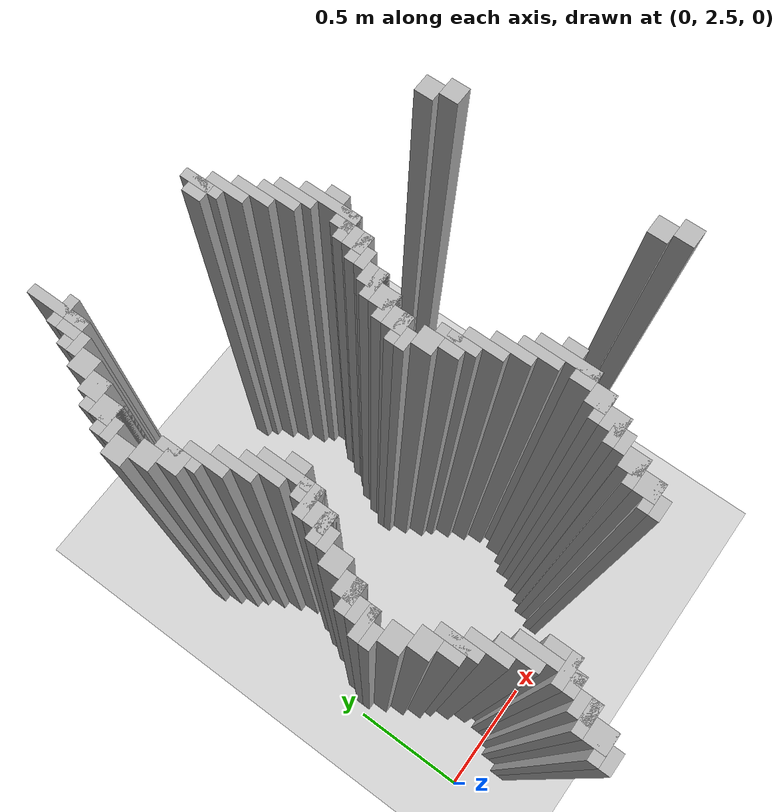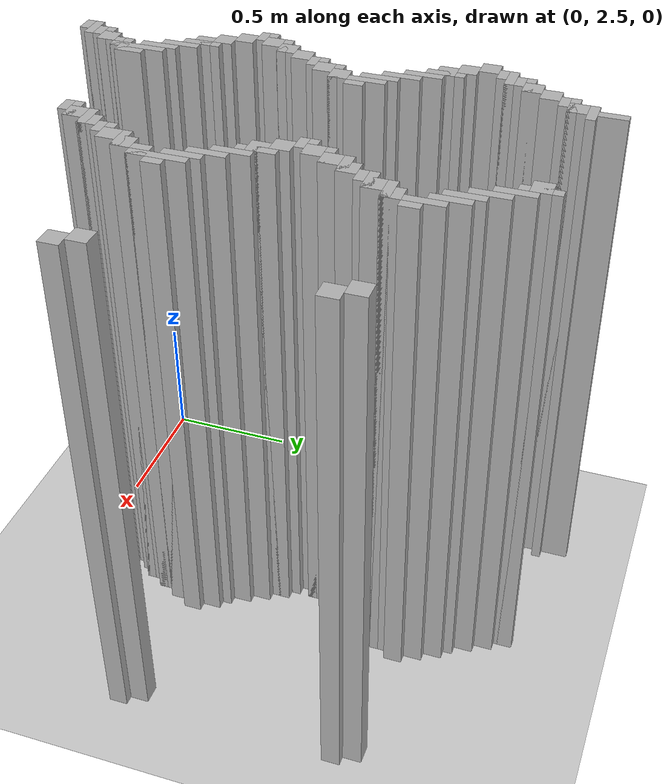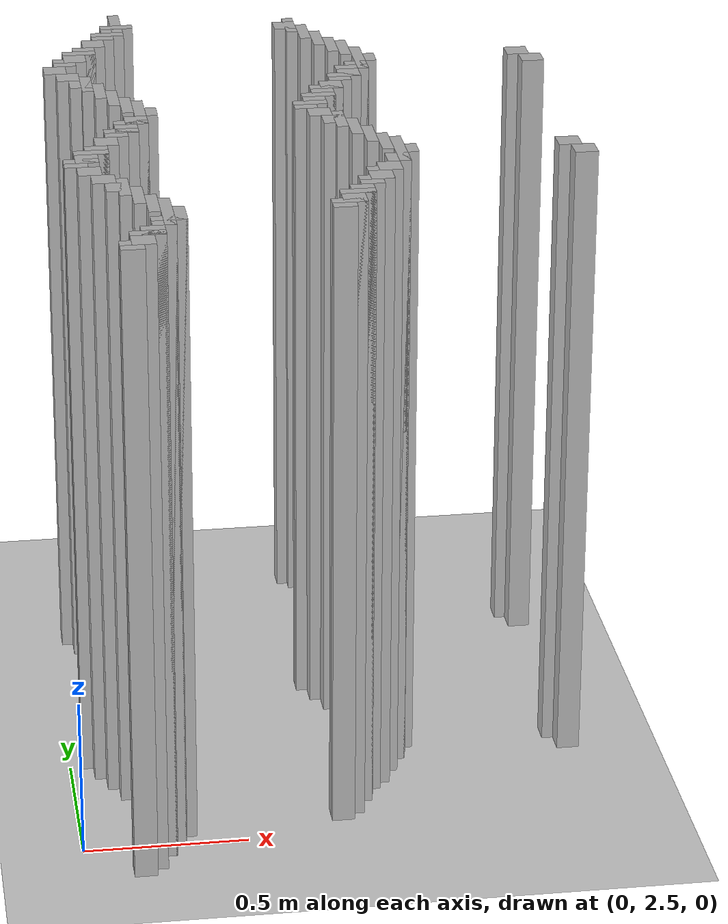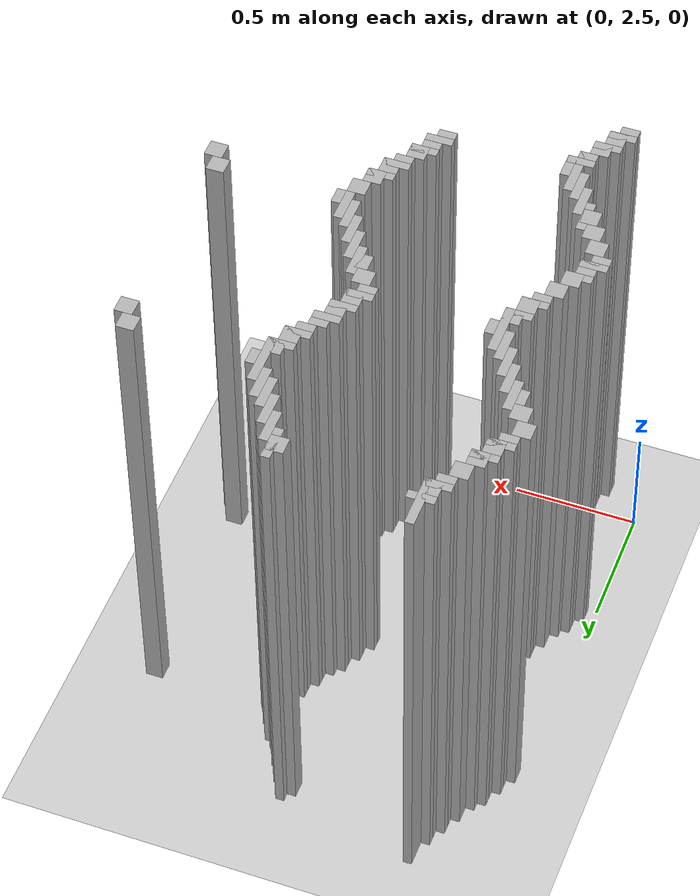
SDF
<sdf version="1.6">
 <world name="slam_world">
  <model name="ground_plane">
   <static>true</static>
   <link name="link">
    <collision name="collision">
     <geometry><plane><normal>0 0 1</normal><size>100 100</size></plane></geometry>
    </collision>
    <visual name="visual">
     <geometry><plane><normal>0 0 1</normal><size>100 100</size></plane></geometry>
     <material>
      <ambient>0.8 0.8 0.8 1</ambient>
      <diffuse>0.8 0.8 0.8 1</diffuse>
      <specular>0.8 0.8 0.8 1</specular>
     </material>
    </visual>
   </link>
  </model>
  <model name="wall_4261">
   <static>true</static>
   <pose>0.29582366589327147 4.280742459396752 1.0 0 0 0</pose>
   <link name="link">
    <collision name="collision">
     <geometry><box><size>0.03480278422273782 0.2088167053364269 2.0</size></box></geometry>
    </collision>
    <visual name="visual">
     <geometry><box><size>0.03480278422273782 0.2088167053364269 2.0</size></box></geometry>
     <material><ambient>0.5 0.5 0.5 1</ambient><diffuse>0.7 0.7 0.7 1</diffuse></material>
    </visual>
   </link>
  </model>
  <model name="wall_4298">
   <static>true</static>
   <pose>0.29582366589327147 4.263341067285383 1.0 0 0 0</pose>
   <link name="link">
    <collision name="collision">
     <geometry><box><size>0.10440835266821345 0.03480278422273782 2.0</size></box></geometry>
    </collision>
    <visual name="visual">
     <geometry><box><size>0.10440835266821345 0.03480278422273782 2.0</size></box></geometry>
     <material><ambient>0.5 0.5 0.5 1</ambient><diffuse>0.7 0.7 0.7 1</diffuse></material>
    </visual>
   </link>
  </model>
  <model name="wall_4299">
   <static>true</static>
   <pose>0.8526682134570766 4.211136890951276 1.0 0 0 0</pose>
   <link name="link">
    <collision name="collision">
     <geometry><box><size>0.03480278422273782 0.13921113689095127 2.0</size></box></geometry>
    </collision>
    <visual name="visual">
     <geometry><box><size>0.03480278422273782 0.13921113689095127 2.0</size></box></geometry>
     <material><ambient>0.5 0.5 0.5 1</ambient><diffuse>0.7 0.7 0.7 1</diffuse></material>
    </visual>
   </link>
  </model>
  <model name="wall_4312">
   <static>true</static>
   <pose>0.27842227378190254 4.211136890951276 1.0 0 0 0</pose>
   <link name="link">
    <collision name="collision">
     <geometry><box><size>0.06960556844547564 0.06960556844547564 2.0</size></box></geometry>
    </collision>
    <visual name="visual">
     <geometry><box><size>0.06960556844547564 0.06960556844547564 2.0</size></box></geometry>
     <material><ambient>0.5 0.5 0.5 1</ambient><diffuse>0.7 0.7 0.7 1</diffuse></material>
    </visual>
   </link>
  </model>
  <model name="wall_4313">
   <static>true</static>
   <pose>0.8352668213457076 4.211136890951276 1.0 0 0 0</pose>
   <link name="link">
    <collision name="collision">
     <geometry><box><size>0.06960556844547564 0.06960556844547564 2.0</size></box></geometry>
    </collision>
    <visual name="visual">
     <geometry><box><size>0.06960556844547564 0.06960556844547564 2.0</size></box></geometry>
     <material><ambient>0.5 0.5 0.5 1</ambient><diffuse>0.7 0.7 0.7 1</diffuse></material>
    </visual>
   </link>
  </model>
  <model name="wall_4327">
   <static>true</static>
   <pose>0.2610208816705336 4.193735498839907 1.0 0 0 0</pose>
   <link name="link">
    <collision name="collision">
     <geometry><box><size>0.10440835266821345 0.03480278422273782 2.0</size></box></geometry>
    </collision>
    <visual name="visual">
     <geometry><box><size>0.10440835266821345 0.03480278422273782 2.0</size></box></geometry>
     <material><ambient>0.5 0.5 0.5 1</ambient><diffuse>0.7 0.7 0.7 1</diffuse></material>
    </visual>
   </link>
  </model>
  <model name="wall_4328">
   <static>true</static>
   <pose>0.8874709976798143 4.1415313225058 1.0 0 0 0</pose>
   <link name="link">
    <collision name="collision">
     <geometry><box><size>0.03480278422273782 0.13921113689095127 2.0</size></box></geometry>
    </collision>
    <visual name="visual">
     <geometry><box><size>0.03480278422273782 0.13921113689095127 2.0</size></box></geometry>
     <material><ambient>0.5 0.5 0.5 1</ambient><diffuse>0.7 0.7 0.7 1</diffuse></material>
    </visual>
   </link>
  </model>
  <model name="wall_4342">
   <static>true</static>
   <pose>0.24361948955916474 4.158932714617169 1.0 0 0 0</pose>
   <link name="link">
    <collision name="collision">
     <geometry><box><size>0.06960556844547564 0.03480278422273782 2.0</size></box></geometry>
    </collision>
    <visual name="visual">
     <geometry><box><size>0.06960556844547564 0.03480278422273782 2.0</size></box></geometry>
     <material><ambient>0.5 0.5 0.5 1</ambient><diffuse>0.7 0.7 0.7 1</diffuse></material>
    </visual>
   </link>
  </model>
  <model name="wall_4351">
   <static>true</static>
   <pose>0.2088167053364269 4.106728538283062 1.0 0 0 0</pose>
   <link name="link">
    <collision name="collision">
     <geometry><box><size>0.06960556844547564 0.06960556844547564 2.0</size></box></geometry>
    </collision>
    <visual name="visual">
     <geometry><box><size>0.06960556844547564 0.06960556844547564 2.0</size></box></geometry>
     <material><ambient>0.5 0.5 0.5 1</ambient><diffuse>0.7 0.7 0.7 1</diffuse></material>
    </visual>
   </link>
  </model>
  <model name="wall_4352">
   <static>true</static>
   <pose>0.9222737819025522 4.071925754060325 1.0 0 0 0</pose>
   <link name="link">
    <collision name="collision">
     <geometry><box><size>0.03480278422273782 0.13921113689095127 2.0</size></box></geometry>
    </collision>
    <visual name="visual">
     <geometry><box><size>0.03480278422273782 0.13921113689095127 2.0</size></box></geometry>
     <material><ambient>0.5 0.5 0.5 1</ambient><diffuse>0.7 0.7 0.7 1</diffuse></material>
    </visual>
   </link>
  </model>
  <model name="wall_4366">
   <static>true</static>
   <pose>0.17401392111368907 4.037122969837587 1.0 0 0 0</pose>
   <link name="link">
    <collision name="collision">
     <geometry><box><size>0.06960556844547564 0.06960556844547564 2.0</size></box></geometry>
    </collision>
    <visual name="visual">
     <geometry><box><size>0.06960556844547564 0.06960556844547564 2.0</size></box></geometry>
     <material><ambient>0.5 0.5 0.5 1</ambient><diffuse>0.7 0.7 0.7 1</diffuse></material>
    </visual>
   </link>
  </model>
  <model name="wall_4367">
   <static>true</static>
   <pose>0.95707656612529 4.002320185614849 1.0 0 0 0</pose>
   <link name="link">
    <collision name="collision">
     <geometry><box><size>0.03480278422273782 0.13921113689095127 2.0</size></box></geometry>
    </collision>
    <visual name="visual">
     <geometry><box><size>0.03480278422273782 0.13921113689095127 2.0</size></box></geometry>
     <material><ambient>0.5 0.5 0.5 1</ambient><diffuse>0.7 0.7 0.7 1</diffuse></material>
    </visual>
   </link>
  </model>
  <model name="wall_4381">
   <static>true</static>
   <pose>0.15661252900232017 4.019721577726218 1.0 0 0 0</pose>
   <link name="link">
    <collision name="collision">
     <geometry><box><size>0.10440835266821345 0.03480278422273782 2.0</size></box></geometry>
    </collision>
    <visual name="visual">
     <geometry><box><size>0.10440835266821345 0.03480278422273782 2.0</size></box></geometry>
     <material><ambient>0.5 0.5 0.5 1</ambient><diffuse>0.7 0.7 0.7 1</diffuse></material>
    </visual>
   </link>
  </model>
  <model name="wall_4382">
   <static>true</static>
   <pose>0.9918793503480278 3.967517401392111 1.0 0 0 0</pose>
   <link name="link">
    <collision name="collision">
     <geometry><box><size>0.03480278422273782 0.13921113689095127 2.0</size></box></geometry>
    </collision>
    <visual name="visual">
     <geometry><box><size>0.03480278422273782 0.13921113689095127 2.0</size></box></geometry>
     <material><ambient>0.5 0.5 0.5 1</ambient><diffuse>0.7 0.7 0.7 1</diffuse></material>
    </visual>
   </link>
  </model>
  <model name="wall_4396">
   <static>true</static>
   <pose>0.13921113689095127 3.967517401392111 1.0 0 0 0</pose>
   <link name="link">
    <collision name="collision">
     <geometry><box><size>0.06960556844547564 0.06960556844547564 2.0</size></box></geometry>
    </collision>
    <visual name="visual">
     <geometry><box><size>0.06960556844547564 0.06960556844547564 2.0</size></box></geometry>
     <material><ambient>0.5 0.5 0.5 1</ambient><diffuse>0.7 0.7 0.7 1</diffuse></material>
    </visual>
   </link>
  </model>
  <model name="wall_4404">
   <static>true</static>
   <pose>0.12180974477958237 3.9501160092807424 1.0 0 0 0</pose>
   <link name="link">
    <collision name="collision">
     <geometry><box><size>0.10440835266821345 0.03480278422273782 2.0</size></box></geometry>
    </collision>
    <visual name="visual">
     <geometry><box><size>0.10440835266821345 0.03480278422273782 2.0</size></box></geometry>
     <material><ambient>0.5 0.5 0.5 1</ambient><diffuse>0.7 0.7 0.7 1</diffuse></material>
    </visual>
   </link>
  </model>
  <model name="wall_4405">
   <static>true</static>
   <pose>1.0266821345707655 3.863109048723898 1.0 0 0 0</pose>
   <link name="link">
    <collision name="collision">
     <geometry><box><size>0.03480278422273782 0.2088167053364269 2.0</size></box></geometry>
    </collision>
    <visual name="visual">
     <geometry><box><size>0.03480278422273782 0.2088167053364269 2.0</size></box></geometry>
     <material><ambient>0.5 0.5 0.5 1</ambient><diffuse>0.7 0.7 0.7 1</diffuse></material>
    </visual>
   </link>
  </model>
  <model name="wall_4419">
   <static>true</static>
   <pose>0.10440835266821345 3.9153132250580045 1.0 0 0 0</pose>
   <link name="link">
    <collision name="collision">
     <geometry><box><size>0.06960556844547564 0.03480278422273782 2.0</size></box></geometry>
    </collision>
    <visual name="visual">
     <geometry><box><size>0.06960556844547564 0.03480278422273782 2.0</size></box></geometry>
     <material><ambient>0.5 0.5 0.5 1</ambient><diffuse>0.7 0.7 0.7 1</diffuse></material>
    </visual>
   </link>
  </model>
  <model name="wall_4427">
   <static>true</static>
   <pose>0.06960556844547564 3.863109048723898 1.0 0 0 0</pose>
   <link name="link">
    <collision name="collision">
     <geometry><box><size>0.06960556844547564 0.06960556844547564 2.0</size></box></geometry>
    </collision>
    <visual name="visual">
     <geometry><box><size>0.06960556844547564 0.06960556844547564 2.0</size></box></geometry>
     <material><ambient>0.5 0.5 0.5 1</ambient><diffuse>0.7 0.7 0.7 1</diffuse></material>
    </visual>
   </link>
  </model>
  <model name="wall_4428">
   <static>true</static>
   <pose>1.0614849187935034 3.863109048723898 1.0 0 0 0</pose>
   <link name="link">
    <collision name="collision">
     <geometry><box><size>0.03480278422273782 0.06960556844547564 2.0</size></box></geometry>
    </collision>
    <visual name="visual">
     <geometry><box><size>0.03480278422273782 0.06960556844547564 2.0</size></box></geometry>
     <material><ambient>0.5 0.5 0.5 1</ambient><diffuse>0.7 0.7 0.7 1</diffuse></material>
    </visual>
   </link>
  </model>
  <model name="wall_4429">
   <static>true</static>
   <pose>1.531322505800464 3.863109048723898 1.0 0 0 0</pose>
   <link name="link">
    <collision name="collision">
     <geometry><box><size>0.06960556844547564 0.06960556844547564 2.0</size></box></geometry>
    </collision>
    <visual name="visual">
     <geometry><box><size>0.06960556844547564 0.06960556844547564 2.0</size></box></geometry>
     <material><ambient>0.5 0.5 0.5 1</ambient><diffuse>0.7 0.7 0.7 1</diffuse></material>
    </visual>
   </link>
  </model>
  <model name="wall_4443">
   <static>true</static>
   <pose>0.10440835266821345 3.793503480278422 1.0 0 0 0</pose>
   <link name="link">
    <collision name="collision">
     <geometry><box><size>0.06960556844547564 0.06960556844547564 2.0</size></box></geometry>
    </collision>
    <visual name="visual">
     <geometry><box><size>0.06960556844547564 0.06960556844547564 2.0</size></box></geometry>
     <material><ambient>0.5 0.5 0.5 1</ambient><diffuse>0.7 0.7 0.7 1</diffuse></material>
    </visual>
   </link>
  </model>
  <model name="wall_4444">
   <static>true</static>
   <pose>1.0092807424593968 3.793503480278422 1.0 0 0 0</pose>
   <link name="link">
    <collision name="collision">
     <geometry><box><size>0.06960556844547564 0.06960556844547564 2.0</size></box></geometry>
    </collision>
    <visual name="visual">
     <geometry><box><size>0.06960556844547564 0.06960556844547564 2.0</size></box></geometry>
     <material><ambient>0.5 0.5 0.5 1</ambient><diffuse>0.7 0.7 0.7 1</diffuse></material>
    </visual>
   </link>
  </model>
  <model name="wall_4445">
   <static>true</static>
   <pose>1.5661252900232019 3.793503480278422 1.0 0 0 0</pose>
   <link name="link">
    <collision name="collision">
     <geometry><box><size>0.06960556844547564 0.06960556844547564 2.0</size></box></geometry>
    </collision>
    <visual name="visual">
     <geometry><box><size>0.06960556844547564 0.06960556844547564 2.0</size></box></geometry>
     <material><ambient>0.5 0.5 0.5 1</ambient><diffuse>0.7 0.7 0.7 1</diffuse></material>
    </visual>
   </link>
  </model>
  <model name="wall_4460">
   <static>true</static>
   <pose>0.15661252900232017 3.7238979118329465 1.0 0 0 0</pose>
   <link name="link">
    <collision name="collision">
     <geometry><box><size>0.03480278422273782 0.13921113689095127 2.0</size></box></geometry>
    </collision>
    <visual name="visual">
     <geometry><box><size>0.03480278422273782 0.13921113689095127 2.0</size></box></geometry>
     <material><ambient>0.5 0.5 0.5 1</ambient><diffuse>0.7 0.7 0.7 1</diffuse></material>
    </visual>
   </link>
  </model>
  <model name="wall_4461">
   <static>true</static>
   <pose>0.9918793503480278 3.776102088167053 1.0 0 0 0</pose>
   <link name="link">
    <collision name="collision">
     <geometry><box><size>0.10440835266821345 0.03480278422273782 2.0</size></box></geometry>
    </collision>
    <visual name="visual">
     <geometry><box><size>0.10440835266821345 0.03480278422273782 2.0</size></box></geometry>
     <material><ambient>0.5 0.5 0.5 1</ambient><diffuse>0.7 0.7 0.7 1</diffuse></material>
    </visual>
   </link>
  </model>
  <model name="wall_4477">
   <static>true</static>
   <pose>0.13921113689095127 3.7238979118329465 1.0 0 0 0</pose>
   <link name="link">
    <collision name="collision">
     <geometry><box><size>0.06960556844547564 0.06960556844547564 2.0</size></box></geometry>
    </collision>
    <visual name="visual">
     <geometry><box><size>0.06960556844547564 0.06960556844547564 2.0</size></box></geometry>
     <material><ambient>0.5 0.5 0.5 1</ambient><diffuse>0.7 0.7 0.7 1</diffuse></material>
    </visual>
   </link>
  </model>
  <model name="wall_4478">
   <static>true</static>
   <pose>0.974477958236659 3.7238979118329465 1.0 0 0 0</pose>
   <link name="link">
    <collision name="collision">
     <geometry><box><size>0.06960556844547564 0.06960556844547564 2.0</size></box></geometry>
    </collision>
    <visual name="visual">
     <geometry><box><size>0.06960556844547564 0.06960556844547564 2.0</size></box></geometry>
     <material><ambient>0.5 0.5 0.5 1</ambient><diffuse>0.7 0.7 0.7 1</diffuse></material>
    </visual>
   </link>
  </model>
  <model name="wall_4494">
   <static>true</static>
   <pose>0.191415313225058 3.6542923433874708 1.0 0 0 0</pose>
   <link name="link">
    <collision name="collision">
     <geometry><box><size>0.03480278422273782 0.13921113689095127 2.0</size></box></geometry>
    </collision>
    <visual name="visual">
     <geometry><box><size>0.03480278422273782 0.13921113689095127 2.0</size></box></geometry>
     <material><ambient>0.5 0.5 0.5 1</ambient><diffuse>0.7 0.7 0.7 1</diffuse></material>
    </visual>
   </link>
  </model>
  <model name="wall_4495">
   <static>true</static>
   <pose>0.95707656612529 3.706496519721578 1.0 0 0 0</pose>
   <link name="link">
    <collision name="collision">
     <geometry><box><size>0.10440835266821345 0.03480278422273782 2.0</size></box></geometry>
    </collision>
    <visual name="visual">
     <geometry><box><size>0.10440835266821345 0.03480278422273782 2.0</size></box></geometry>
     <material><ambient>0.5 0.5 0.5 1</ambient><diffuse>0.7 0.7 0.7 1</diffuse></material>
    </visual>
   </link>
  </model>
  <model name="wall_4511">
   <static>true</static>
   <pose>0.9396751740139211 3.67169373549884 1.0 0 0 0</pose>
   <link name="link">
    <collision name="collision">
     <geometry><box><size>0.06960556844547564 0.03480278422273782 2.0</size></box></geometry>
    </collision>
    <visual name="visual">
     <geometry><box><size>0.06960556844547564 0.03480278422273782 2.0</size></box></geometry>
     <material><ambient>0.5 0.5 0.5 1</ambient><diffuse>0.7 0.7 0.7 1</diffuse></material>
    </visual>
   </link>
  </model>
  <model name="wall_4518">
   <static>true</static>
   <pose>0.2262180974477958 3.584686774941995 1.0 0 0 0</pose>
   <link name="link">
    <collision name="collision">
     <geometry><box><size>0.03480278422273782 0.13921113689095127 2.0</size></box></geometry>
    </collision>
    <visual name="visual">
     <geometry><box><size>0.03480278422273782 0.13921113689095127 2.0</size></box></geometry>
     <material><ambient>0.5 0.5 0.5 1</ambient><diffuse>0.7 0.7 0.7 1</diffuse></material>
    </visual>
   </link>
  </model>
  <model name="wall_4519">
   <static>true</static>
   <pose>0.9048723897911832 3.619489559164733 1.0 0 0 0</pose>
   <link name="link">
    <collision name="collision">
     <geometry><box><size>0.06960556844547564 0.06960556844547564 2.0</size></box></geometry>
    </collision>
    <visual name="visual">
     <geometry><box><size>0.06960556844547564 0.06960556844547564 2.0</size></box></geometry>
     <material><ambient>0.5 0.5 0.5 1</ambient><diffuse>0.7 0.7 0.7 1</diffuse></material>
    </visual>
   </link>
  </model>
  <model name="wall_4535">
   <static>true</static>
   <pose>0.8874709976798143 3.602088167053364 1.0 0 0 0</pose>
   <link name="link">
    <collision name="collision">
     <geometry><box><size>0.10440835266821345 0.03480278422273782 2.0</size></box></geometry>
    </collision>
    <visual name="visual">
     <geometry><box><size>0.10440835266821345 0.03480278422273782 2.0</size></box></geometry>
     <material><ambient>0.5 0.5 0.5 1</ambient><diffuse>0.7 0.7 0.7 1</diffuse></material>
    </visual>
   </link>
  </model>
  <model name="wall_4542">
   <static>true</static>
   <pose>0.2610208816705336 3.51508120649652 1.0 0 0 0</pose>
   <link name="link">
    <collision name="collision">
     <geometry><box><size>0.03480278422273782 0.13921113689095127 2.0</size></box></geometry>
    </collision>
    <visual name="visual">
     <geometry><box><size>0.03480278422273782 0.13921113689095127 2.0</size></box></geometry>
     <material><ambient>0.5 0.5 0.5 1</ambient><diffuse>0.7 0.7 0.7 1</diffuse></material>
    </visual>
   </link>
  </model>
  <model name="wall_4543">
   <static>true</static>
   <pose>0.8700696055684455 3.549883990719257 1.0 0 0 0</pose>
   <link name="link">
    <collision name="collision">
     <geometry><box><size>0.06960556844547564 0.06960556844547564 2.0</size></box></geometry>
    </collision>
    <visual name="visual">
     <geometry><box><size>0.06960556844547564 0.06960556844547564 2.0</size></box></geometry>
     <material><ambient>0.5 0.5 0.5 1</ambient><diffuse>0.7 0.7 0.7 1</diffuse></material>
    </visual>
   </link>
  </model>
  <model name="wall_4559">
   <static>true</static>
   <pose>0.29582366589327147 3.445475638051044 1.0 0 0 0</pose>
   <link name="link">
    <collision name="collision">
     <geometry><box><size>0.03480278422273782 0.2088167053364269 2.0</size></box></geometry>
    </collision>
    <visual name="visual">
     <geometry><box><size>0.03480278422273782 0.2088167053364269 2.0</size></box></geometry>
     <material><ambient>0.5 0.5 0.5 1</ambient><diffuse>0.7 0.7 0.7 1</diffuse></material>
    </visual>
   </link>
  </model>
  <model name="wall_4560">
   <static>true</static>
   <pose>0.8526682134570766 3.5324825986078885 1.0 0 0 0</pose>
   <link name="link">
    <collision name="collision">
     <geometry><box><size>0.10440835266821345 0.03480278422273782 2.0</size></box></geometry>
    </collision>
    <visual name="visual">
     <geometry><box><size>0.10440835266821345 0.03480278422273782 2.0</size></box></geometry>
     <material><ambient>0.5 0.5 0.5 1</ambient><diffuse>0.7 0.7 0.7 1</diffuse></material>
    </visual>
   </link>
  </model>
  <model name="wall_4576">
   <static>true</static>
   <pose>0.8352668213457076 3.480278422273782 1.0 0 0 0</pose>
   <link name="link">
    <collision name="collision">
     <geometry><box><size>0.06960556844547564 0.06960556844547564 2.0</size></box></geometry>
    </collision>
    <visual name="visual">
     <geometry><box><size>0.06960556844547564 0.06960556844547564 2.0</size></box></geometry>
     <material><ambient>0.5 0.5 0.5 1</ambient><diffuse>0.7 0.7 0.7 1</diffuse></material>
    </visual>
   </link>
  </model>
  <model name="wall_4583">
   <static>true</static>
   <pose>0.3306264501160093 3.445475638051044 1.0 0 0 0</pose>
   <link name="link">
    <collision name="collision">
     <geometry><box><size>0.03480278422273782 0.06960556844547564 2.0</size></box></geometry>
    </collision>
    <visual name="visual">
     <geometry><box><size>0.03480278422273782 0.06960556844547564 2.0</size></box></geometry>
     <material><ambient>0.5 0.5 0.5 1</ambient><diffuse>0.7 0.7 0.7 1</diffuse></material>
    </visual>
   </link>
  </model>
  <model name="wall_4584">
   <static>true</static>
   <pose>0.8178654292343387 3.4628770301624128 1.0 0 0 0</pose>
   <link name="link">
    <collision name="collision">
     <geometry><box><size>0.10440835266821345 0.03480278422273782 2.0</size></box></geometry>
    </collision>
    <visual name="visual">
     <geometry><box><size>0.10440835266821345 0.03480278422273782 2.0</size></box></geometry>
     <material><ambient>0.5 0.5 0.5 1</ambient><diffuse>0.7 0.7 0.7 1</diffuse></material>
    </visual>
   </link>
  </model>
  <model name="wall_4599">
   <static>true</static>
   <pose>0.8004640371229698 3.428074245939675 1.0 0 0 0</pose>
   <link name="link">
    <collision name="collision">
     <geometry><box><size>0.06960556844547564 0.03480278422273782 2.0</size></box></geometry>
    </collision>
    <visual name="visual">
     <geometry><box><size>0.06960556844547564 0.03480278422273782 2.0</size></box></geometry>
     <material><ambient>0.5 0.5 0.5 1</ambient><diffuse>0.7 0.7 0.7 1</diffuse></material>
    </visual>
   </link>
  </model>
  <model name="wall_4606">
   <static>true</static>
   <pose>0.27842227378190254 3.3758700696055683 1.0 0 0 0</pose>
   <link name="link">
    <collision name="collision">
     <geometry><box><size>0.06960556844547564 0.06960556844547564 2.0</size></box></geometry>
    </collision>
    <visual name="visual">
     <geometry><box><size>0.06960556844547564 0.06960556844547564 2.0</size></box></geometry>
     <material><ambient>0.5 0.5 0.5 1</ambient><diffuse>0.7 0.7 0.7 1</diffuse></material>
    </visual>
   </link>
  </model>
  <model name="wall_4607">
   <static>true</static>
   <pose>0.8352668213457076 3.3758700696055683 1.0 0 0 0</pose>
   <link name="link">
    <collision name="collision">
     <geometry><box><size>0.06960556844547564 0.06960556844547564 2.0</size></box></geometry>
    </collision>
    <visual name="visual">
     <geometry><box><size>0.06960556844547564 0.06960556844547564 2.0</size></box></geometry>
     <material><ambient>0.5 0.5 0.5 1</ambient><diffuse>0.7 0.7 0.7 1</diffuse></material>
    </visual>
   </link>
  </model>
  <model name="wall_4619">
   <static>true</static>
   <pose>0.2610208816705336 3.358468677494199 1.0 0 0 0</pose>
   <link name="link">
    <collision name="collision">
     <geometry><box><size>0.10440835266821345 0.03480278422273782 2.0</size></box></geometry>
    </collision>
    <visual name="visual">
     <geometry><box><size>0.10440835266821345 0.03480278422273782 2.0</size></box></geometry>
     <material><ambient>0.5 0.5 0.5 1</ambient><diffuse>0.7 0.7 0.7 1</diffuse></material>
    </visual>
   </link>
  </model>
  <model name="wall_4620">
   <static>true</static>
   <pose>0.8874709976798143 3.3062645011600926 1.0 0 0 0</pose>
   <link name="link">
    <collision name="collision">
     <geometry><box><size>0.03480278422273782 0.13921113689095127 2.0</size></box></geometry>
    </collision>
    <visual name="visual">
     <geometry><box><size>0.03480278422273782 0.13921113689095127 2.0</size></box></geometry>
     <material><ambient>0.5 0.5 0.5 1</ambient><diffuse>0.7 0.7 0.7 1</diffuse></material>
    </visual>
   </link>
  </model>
  <model name="wall_4632">
   <static>true</static>
   <pose>0.24361948955916474 3.3062645011600926 1.0 0 0 0</pose>
   <link name="link">
    <collision name="collision">
     <geometry><box><size>0.06960556844547564 0.06960556844547564 2.0</size></box></geometry>
    </collision>
    <visual name="visual">
     <geometry><box><size>0.06960556844547564 0.06960556844547564 2.0</size></box></geometry>
     <material><ambient>0.5 0.5 0.5 1</ambient><diffuse>0.7 0.7 0.7 1</diffuse></material>
    </visual>
   </link>
  </model>
  <model name="wall_4633">
   <static>true</static>
   <pose>0.8700696055684455 3.3062645011600926 1.0 0 0 0</pose>
   <link name="link">
    <collision name="collision">
     <geometry><box><size>0.06960556844547564 0.06960556844547564 2.0</size></box></geometry>
    </collision>
    <visual name="visual">
     <geometry><box><size>0.06960556844547564 0.06960556844547564 2.0</size></box></geometry>
     <material><ambient>0.5 0.5 0.5 1</ambient><diffuse>0.7 0.7 0.7 1</diffuse></material>
    </visual>
   </link>
  </model>
  <model name="wall_4645">
   <static>true</static>
   <pose>0.2262180974477958 3.288863109048724 1.0 0 0 0</pose>
   <link name="link">
    <collision name="collision">
     <geometry><box><size>0.10440835266821345 0.03480278422273782 2.0</size></box></geometry>
    </collision>
    <visual name="visual">
     <geometry><box><size>0.10440835266821345 0.03480278422273782 2.0</size></box></geometry>
     <material><ambient>0.5 0.5 0.5 1</ambient><diffuse>0.7 0.7 0.7 1</diffuse></material>
    </visual>
   </link>
  </model>
  <model name="wall_4646">
   <static>true</static>
   <pose>0.9222737819025522 3.236658932714617 1.0 0 0 0</pose>
   <link name="link">
    <collision name="collision">
     <geometry><box><size>0.03480278422273782 0.13921113689095127 2.0</size></box></geometry>
    </collision>
    <visual name="visual">
     <geometry><box><size>0.03480278422273782 0.13921113689095127 2.0</size></box></geometry>
     <material><ambient>0.5 0.5 0.5 1</ambient><diffuse>0.7 0.7 0.7 1</diffuse></material>
    </visual>
   </link>
  </model>
  <model name="wall_4658">
   <static>true</static>
   <pose>0.2088167053364269 3.254060324825986 1.0 0 0 0</pose>
   <link name="link">
    <collision name="collision">
     <geometry><box><size>0.06960556844547564 0.03480278422273782 2.0</size></box></geometry>
    </collision>
    <visual name="visual">
     <geometry><box><size>0.06960556844547564 0.03480278422273782 2.0</size></box></geometry>
     <material><ambient>0.5 0.5 0.5 1</ambient><diffuse>0.7 0.7 0.7 1</diffuse></material>
    </visual>
   </link>
  </model>
  <model name="wall_4664">
   <static>true</static>
   <pose>0.17401392111368907 3.201856148491879 1.0 0 0 0</pose>
   <link name="link">
    <collision name="collision">
     <geometry><box><size>0.06960556844547564 0.06960556844547564 2.0</size></box></geometry>
    </collision>
    <visual name="visual">
     <geometry><box><size>0.06960556844547564 0.06960556844547564 2.0</size></box></geometry>
     <material><ambient>0.5 0.5 0.5 1</ambient><diffuse>0.7 0.7 0.7 1</diffuse></material>
    </visual>
   </link>
  </model>
  <model name="wall_4665">
   <static>true</static>
   <pose>0.95707656612529 3.167053364269141 1.0 0 0 0</pose>
   <link name="link">
    <collision name="collision">
     <geometry><box><size>0.03480278422273782 0.13921113689095127 2.0</size></box></geometry>
    </collision>
    <visual name="visual">
     <geometry><box><size>0.03480278422273782 0.13921113689095127 2.0</size></box></geometry>
     <material><ambient>0.5 0.5 0.5 1</ambient><diffuse>0.7 0.7 0.7 1</diffuse></material>
    </visual>
   </link>
  </model>
  <model name="wall_4677">
   <static>true</static>
   <pose>0.13921113689095127 3.1322505800464038 1.0 0 0 0</pose>
   <link name="link">
    <collision name="collision">
     <geometry><box><size>0.06960556844547564 0.06960556844547564 2.0</size></box></geometry>
    </collision>
    <visual name="visual">
     <geometry><box><size>0.06960556844547564 0.06960556844547564 2.0</size></box></geometry>
     <material><ambient>0.5 0.5 0.5 1</ambient><diffuse>0.7 0.7 0.7 1</diffuse></material>
    </visual>
   </link>
  </model>
  <model name="wall_4678">
   <static>true</static>
   <pose>0.9918793503480278 3.097447795823666 1.0 0 0 0</pose>
   <link name="link">
    <collision name="collision">
     <geometry><box><size>0.03480278422273782 0.13921113689095127 2.0</size></box></geometry>
    </collision>
    <visual name="visual">
     <geometry><box><size>0.03480278422273782 0.13921113689095127 2.0</size></box></geometry>
     <material><ambient>0.5 0.5 0.5 1</ambient><diffuse>0.7 0.7 0.7 1</diffuse></material>
    </visual>
   </link>
  </model>
  <model name="wall_4690">
   <static>true</static>
   <pose>0.12180974477958237 3.1148491879350346 1.0 0 0 0</pose>
   <link name="link">
    <collision name="collision">
     <geometry><box><size>0.10440835266821345 0.03480278422273782 2.0</size></box></geometry>
    </collision>
    <visual name="visual">
     <geometry><box><size>0.10440835266821345 0.03480278422273782 2.0</size></box></geometry>
     <material><ambient>0.5 0.5 0.5 1</ambient><diffuse>0.7 0.7 0.7 1</diffuse></material>
    </visual>
   </link>
  </model>
  <model name="wall_4691">
   <static>true</static>
   <pose>1.0266821345707655 3.02784222737819 1.0 0 0 0</pose>
   <link name="link">
    <collision name="collision">
     <geometry><box><size>0.03480278422273782 0.2088167053364269 2.0</size></box></geometry>
    </collision>
    <visual name="visual">
     <geometry><box><size>0.03480278422273782 0.2088167053364269 2.0</size></box></geometry>
     <material><ambient>0.5 0.5 0.5 1</ambient><diffuse>0.7 0.7 0.7 1</diffuse></material>
    </visual>
   </link>
  </model>
  <model name="wall_4703">
   <static>true</static>
   <pose>0.10440835266821345 3.062645011600928 1.0 0 0 0</pose>
   <link name="link">
    <collision name="collision">
     <geometry><box><size>0.06960556844547564 0.06960556844547564 2.0</size></box></geometry>
    </collision>
    <visual name="visual">
     <geometry><box><size>0.06960556844547564 0.06960556844547564 2.0</size></box></geometry>
     <material><ambient>0.5 0.5 0.5 1</ambient><diffuse>0.7 0.7 0.7 1</diffuse></material>
    </visual>
   </link>
  </model>
  <model name="wall_4709">
   <static>true</static>
   <pose>0.08700696055684454 3.045243619489559 1.0 0 0 0</pose>
   <link name="link">
    <collision name="collision">
     <geometry><box><size>0.10440835266821345 0.03480278422273782 2.0</size></box></geometry>
    </collision>
    <visual name="visual">
     <geometry><box><size>0.10440835266821345 0.03480278422273782 2.0</size></box></geometry>
     <material><ambient>0.5 0.5 0.5 1</ambient><diffuse>0.7 0.7 0.7 1</diffuse></material>
    </visual>
   </link>
  </model>
  <model name="wall_4710">
   <static>true</static>
   <pose>1.0614849187935034 3.02784222737819 1.0 0 0 0</pose>
   <link name="link">
    <collision name="collision">
     <geometry><box><size>0.03480278422273782 0.06960556844547564 2.0</size></box></geometry>
    </collision>
    <visual name="visual">
     <geometry><box><size>0.03480278422273782 0.06960556844547564 2.0</size></box></geometry>
     <material><ambient>0.5 0.5 0.5 1</ambient><diffuse>0.7 0.7 0.7 1</diffuse></material>
    </visual>
   </link>
  </model>
  <model name="wall_4711">
   <static>true</static>
   <pose>1.531322505800464 3.02784222737819 1.0 0 0 0</pose>
   <link name="link">
    <collision name="collision">
     <geometry><box><size>0.06960556844547564 0.06960556844547564 2.0</size></box></geometry>
    </collision>
    <visual name="visual">
     <geometry><box><size>0.06960556844547564 0.06960556844547564 2.0</size></box></geometry>
     <material><ambient>0.5 0.5 0.5 1</ambient><diffuse>0.7 0.7 0.7 1</diffuse></material>
    </visual>
   </link>
  </model>
  <model name="wall_4725">
   <static>true</static>
   <pose>0.06960556844547564 3.010440835266821 1.0 0 0 0</pose>
   <link name="link">
    <collision name="collision">
     <geometry><box><size>0.06960556844547564 0.03480278422273782 2.0</size></box></geometry>
    </collision>
    <visual name="visual">
     <geometry><box><size>0.06960556844547564 0.03480278422273782 2.0</size></box></geometry>
     <material><ambient>0.5 0.5 0.5 1</ambient><diffuse>0.7 0.7 0.7 1</diffuse></material>
    </visual>
   </link>
  </model>
  <model name="wall_4731">
   <static>true</static>
   <pose>0.10440835266821345 2.9582366589327145 1.0 0 0 0</pose>
   <link name="link">
    <collision name="collision">
     <geometry><box><size>0.06960556844547564 0.06960556844547564 2.0</size></box></geometry>
    </collision>
    <visual name="visual">
     <geometry><box><size>0.06960556844547564 0.06960556844547564 2.0</size></box></geometry>
     <material><ambient>0.5 0.5 0.5 1</ambient><diffuse>0.7 0.7 0.7 1</diffuse></material>
    </visual>
   </link>
  </model>
  <model name="wall_4732">
   <static>true</static>
   <pose>1.0092807424593968 2.9582366589327145 1.0 0 0 0</pose>
   <link name="link">
    <collision name="collision">
     <geometry><box><size>0.06960556844547564 0.06960556844547564 2.0</size></box></geometry>
    </collision>
    <visual name="visual">
     <geometry><box><size>0.06960556844547564 0.06960556844547564 2.0</size></box></geometry>
     <material><ambient>0.5 0.5 0.5 1</ambient><diffuse>0.7 0.7 0.7 1</diffuse></material>
    </visual>
   </link>
  </model>
  <model name="wall_4733">
   <static>true</static>
   <pose>1.5661252900232019 2.9582366589327145 1.0 0 0 0</pose>
   <link name="link">
    <collision name="collision">
     <geometry><box><size>0.06960556844547564 0.06960556844547564 2.0</size></box></geometry>
    </collision>
    <visual name="visual">
     <geometry><box><size>0.06960556844547564 0.06960556844547564 2.0</size></box></geometry>
     <material><ambient>0.5 0.5 0.5 1</ambient><diffuse>0.7 0.7 0.7 1</diffuse></material>
    </visual>
   </link>
  </model>
  <model name="wall_4750">
   <static>true</static>
   <pose>0.13921113689095127 2.8886310904872388 1.0 0 0 0</pose>
   <link name="link">
    <collision name="collision">
     <geometry><box><size>0.06960556844547564 0.06960556844547564 2.0</size></box></geometry>
    </collision>
    <visual name="visual">
     <geometry><box><size>0.06960556844547564 0.06960556844547564 2.0</size></box></geometry>
     <material><ambient>0.5 0.5 0.5 1</ambient><diffuse>0.7 0.7 0.7 1</diffuse></material>
    </visual>
   </link>
  </model>
  <model name="wall_4751">
   <static>true</static>
   <pose>0.974477958236659 2.8886310904872388 1.0 0 0 0</pose>
   <link name="link">
    <collision name="collision">
     <geometry><box><size>0.06960556844547564 0.06960556844547564 2.0</size></box></geometry>
    </collision>
    <visual name="visual">
     <geometry><box><size>0.06960556844547564 0.06960556844547564 2.0</size></box></geometry>
     <material><ambient>0.5 0.5 0.5 1</ambient><diffuse>0.7 0.7 0.7 1</diffuse></material>
    </visual>
   </link>
  </model>
  <model name="wall_4766">
   <static>true</static>
   <pose>0.191415313225058 2.819025522041763 1.0 0 0 0</pose>
   <link name="link">
    <collision name="collision">
     <geometry><box><size>0.03480278422273782 0.13921113689095127 2.0</size></box></geometry>
    </collision>
    <visual name="visual">
     <geometry><box><size>0.03480278422273782 0.13921113689095127 2.0</size></box></geometry>
     <material><ambient>0.5 0.5 0.5 1</ambient><diffuse>0.7 0.7 0.7 1</diffuse></material>
    </visual>
   </link>
  </model>
  <model name="wall_4767">
   <static>true</static>
   <pose>0.95707656612529 2.87122969837587 1.0 0 0 0</pose>
   <link name="link">
    <collision name="collision">
     <geometry><box><size>0.10440835266821345 0.03480278422273782 2.0</size></box></geometry>
    </collision>
    <visual name="visual">
     <geometry><box><size>0.10440835266821345 0.03480278422273782 2.0</size></box></geometry>
     <material><ambient>0.5 0.5 0.5 1</ambient><diffuse>0.7 0.7 0.7 1</diffuse></material>
    </visual>
   </link>
  </model>
  <model name="wall_4782">
   <static>true</static>
   <pose>0.17401392111368907 2.819025522041763 1.0 0 0 0</pose>
   <link name="link">
    <collision name="collision">
     <geometry><box><size>0.06960556844547564 0.06960556844547564 2.0</size></box></geometry>
    </collision>
    <visual name="visual">
     <geometry><box><size>0.06960556844547564 0.06960556844547564 2.0</size></box></geometry>
     <material><ambient>0.5 0.5 0.5 1</ambient><diffuse>0.7 0.7 0.7 1</diffuse></material>
    </visual>
   </link>
  </model>
  <model name="wall_4783">
   <static>true</static>
   <pose>0.9396751740139211 2.819025522041763 1.0 0 0 0</pose>
   <link name="link">
    <collision name="collision">
     <geometry><box><size>0.06960556844547564 0.06960556844547564 2.0</size></box></geometry>
    </collision>
    <visual name="visual">
     <geometry><box><size>0.06960556844547564 0.06960556844547564 2.0</size></box></geometry>
     <material><ambient>0.5 0.5 0.5 1</ambient><diffuse>0.7 0.7 0.7 1</diffuse></material>
    </visual>
   </link>
  </model>
  <model name="wall_4798">
   <static>true</static>
   <pose>0.2262180974477958 2.7494199535962878 1.0 0 0 0</pose>
   <link name="link">
    <collision name="collision">
     <geometry><box><size>0.03480278422273782 0.13921113689095127 2.0</size></box></geometry>
    </collision>
    <visual name="visual">
     <geometry><box><size>0.03480278422273782 0.13921113689095127 2.0</size></box></geometry>
     <material><ambient>0.5 0.5 0.5 1</ambient><diffuse>0.7 0.7 0.7 1</diffuse></material>
    </visual>
   </link>
  </model>
  <model name="wall_4799">
   <static>true</static>
   <pose>0.9222737819025522 2.8016241299303943 1.0 0 0 0</pose>
   <link name="link">
    <collision name="collision">
     <geometry><box><size>0.10440835266821345 0.03480278422273782 2.0</size></box></geometry>
    </collision>
    <visual name="visual">
     <geometry><box><size>0.10440835266821345 0.03480278422273782 2.0</size></box></geometry>
     <material><ambient>0.5 0.5 0.5 1</ambient><diffuse>0.7 0.7 0.7 1</diffuse></material>
    </visual>
   </link>
  </model>
  <model name="wall_4814">
   <static>true</static>
   <pose>0.9048723897911832 2.7668213457076565 1.0 0 0 0</pose>
   <link name="link">
    <collision name="collision">
     <geometry><box><size>0.06960556844547564 0.03480278422273782 2.0</size></box></geometry>
    </collision>
    <visual name="visual">
     <geometry><box><size>0.06960556844547564 0.03480278422273782 2.0</size></box></geometry>
     <material><ambient>0.5 0.5 0.5 1</ambient><diffuse>0.7 0.7 0.7 1</diffuse></material>
    </visual>
   </link>
  </model>
  <model name="wall_4822">
   <static>true</static>
   <pose>0.2610208816705336 2.679814385150812 1.0 0 0 0</pose>
   <link name="link">
    <collision name="collision">
     <geometry><box><size>0.03480278422273782 0.13921113689095127 2.0</size></box></geometry>
    </collision>
    <visual name="visual">
     <geometry><box><size>0.03480278422273782 0.13921113689095127 2.0</size></box></geometry>
     <material><ambient>0.5 0.5 0.5 1</ambient><diffuse>0.7 0.7 0.7 1</diffuse></material>
    </visual>
   </link>
  </model>
  <model name="wall_4823">
   <static>true</static>
   <pose>0.8700696055684455 2.71461716937355 1.0 0 0 0</pose>
   <link name="link">
    <collision name="collision">
     <geometry><box><size>0.06960556844547564 0.06960556844547564 2.0</size></box></geometry>
    </collision>
    <visual name="visual">
     <geometry><box><size>0.06960556844547564 0.06960556844547564 2.0</size></box></geometry>
     <material><ambient>0.5 0.5 0.5 1</ambient><diffuse>0.7 0.7 0.7 1</diffuse></material>
    </visual>
   </link>
  </model>
  <model name="wall_4838">
   <static>true</static>
   <pose>0.29582366589327147 2.6102088167053363 1.0 0 0 0</pose>
   <link name="link">
    <collision name="collision">
     <geometry><box><size>0.03480278422273782 0.2088167053364269 2.0</size></box></geometry>
    </collision>
    <visual name="visual">
     <geometry><box><size>0.03480278422273782 0.2088167053364269 2.0</size></box></geometry>
     <material><ambient>0.5 0.5 0.5 1</ambient><diffuse>0.7 0.7 0.7 1</diffuse></material>
    </visual>
   </link>
  </model>
  <model name="wall_4839">
   <static>true</static>
   <pose>0.8526682134570766 2.6972157772621808 1.0 0 0 0</pose>
   <link name="link">
    <collision name="collision">
     <geometry><box><size>0.10440835266821345 0.03480278422273782 2.0</size></box></geometry>
    </collision>
    <visual name="visual">
     <geometry><box><size>0.10440835266821345 0.03480278422273782 2.0</size></box></geometry>
     <material><ambient>0.5 0.5 0.5 1</ambient><diffuse>0.7 0.7 0.7 1</diffuse></material>
    </visual>
   </link>
  </model>
  <model name="wall_4854">
   <static>true</static>
   <pose>0.8352668213457076 2.645011600928074 1.0 0 0 0</pose>
   <link name="link">
    <collision name="collision">
     <geometry><box><size>0.06960556844547564 0.06960556844547564 2.0</size></box></geometry>
    </collision>
    <visual name="visual">
     <geometry><box><size>0.06960556844547564 0.06960556844547564 2.0</size></box></geometry>
     <material><ambient>0.5 0.5 0.5 1</ambient><diffuse>0.7 0.7 0.7 1</diffuse></material>
    </visual>
   </link>
  </model>
  <model name="wall_4862">
   <static>true</static>
   <pose>0.3306264501160093 2.5928074245939676 1.0 0 0 0</pose>
   <link name="link">
    <collision name="collision">
     <geometry><box><size>0.03480278422273782 0.10440835266821345 2.0</size></box></geometry>
    </collision>
    <visual name="visual">
     <geometry><box><size>0.03480278422273782 0.10440835266821345 2.0</size></box></geometry>
     <material><ambient>0.5 0.5 0.5 1</ambient><diffuse>0.7 0.7 0.7 1</diffuse></material>
    </visual>
   </link>
  </model>
  <model name="wall_4863">
   <static>true</static>
   <pose>0.8178654292343387 2.627610208816705 1.0 0 0 0</pose>
   <link name="link">
    <collision name="collision">
     <geometry><box><size>0.10440835266821345 0.03480278422273782 2.0</size></box></geometry>
    </collision>
    <visual name="visual">
     <geometry><box><size>0.10440835266821345 0.03480278422273782 2.0</size></box></geometry>
     <material><ambient>0.5 0.5 0.5 1</ambient><diffuse>0.7 0.7 0.7 1</diffuse></material>
    </visual>
   </link>
  </model>
  <model name="wall_4877">
   <static>true</static>
   <pose>0.8004640371229698 2.5928074245939676 1.0 0 0 0</pose>
   <link name="link">
    <collision name="collision">
     <geometry><box><size>0.06960556844547564 0.03480278422273782 2.0</size></box></geometry>
    </collision>
    <visual name="visual">
     <geometry><box><size>0.06960556844547564 0.03480278422273782 2.0</size></box></geometry>
     <material><ambient>0.5 0.5 0.5 1</ambient><diffuse>0.7 0.7 0.7 1</diffuse></material>
    </visual>
   </link>
  </model>
  <model name="wall_4887">
   <static>true</static>
   <pose>0.29582366589327147 2.5580046403712298 1.0 0 0 0</pose>
   <link name="link">
    <collision name="collision">
     <geometry><box><size>0.10440835266821345 0.03480278422273782 2.0</size></box></geometry>
    </collision>
    <visual name="visual">
     <geometry><box><size>0.10440835266821345 0.03480278422273782 2.0</size></box></geometry>
     <material><ambient>0.5 0.5 0.5 1</ambient><diffuse>0.7 0.7 0.7 1</diffuse></material>
    </visual>
   </link>
  </model>
  <model name="wall_4900">
   <static>true</static>
   <pose>0.27842227378190254 2.523201856148492 1.0 0 0 0</pose>
   <link name="link">
    <collision name="collision">
     <geometry><box><size>0.06960556844547564 0.03480278422273782 2.0</size></box></geometry>
    </collision>
    <visual name="visual">
     <geometry><box><size>0.06960556844547564 0.03480278422273782 2.0</size></box></geometry>
     <material><ambient>0.5 0.5 0.5 1</ambient><diffuse>0.7 0.7 0.7 1</diffuse></material>
    </visual>
   </link>
  </model>
  <model name="wall_4907">
   <static>true</static>
   <pose>0.24361948955916474 2.470997679814385 1.0 0 0 0</pose>
   <link name="link">
    <collision name="collision">
     <geometry><box><size>0.06960556844547564 0.06960556844547564 2.0</size></box></geometry>
    </collision>
    <visual name="visual">
     <geometry><box><size>0.06960556844547564 0.06960556844547564 2.0</size></box></geometry>
     <material><ambient>0.5 0.5 0.5 1</ambient><diffuse>0.7 0.7 0.7 1</diffuse></material>
    </visual>
   </link>
  </model>
  <model name="wall_4920">
   <static>true</static>
   <pose>0.2262180974477958 2.453596287703016 1.0 0 0 0</pose>
   <link name="link">
    <collision name="collision">
     <geometry><box><size>0.10440835266821345 0.03480278422273782 2.0</size></box></geometry>
    </collision>
    <visual name="visual">
     <geometry><box><size>0.10440835266821345 0.03480278422273782 2.0</size></box></geometry>
     <material><ambient>0.5 0.5 0.5 1</ambient><diffuse>0.7 0.7 0.7 1</diffuse></material>
    </visual>
   </link>
  </model>
  <model name="wall_4933">
   <static>true</static>
   <pose>0.2088167053364269 2.4013921113689096 1.0 0 0 0</pose>
   <link name="link">
    <collision name="collision">
     <geometry><box><size>0.06960556844547564 0.06960556844547564 2.0</size></box></geometry>
    </collision>
    <visual name="visual">
     <geometry><box><size>0.06960556844547564 0.06960556844547564 2.0</size></box></geometry>
     <material><ambient>0.5 0.5 0.5 1</ambient><diffuse>0.7 0.7 0.7 1</diffuse></material>
    </visual>
   </link>
  </model>
  <model name="wall_4945">
   <static>true</static>
   <pose>0.191415313225058 2.3839907192575405 1.0 0 0 0</pose>
   <link name="link">
    <collision name="collision">
     <geometry><box><size>0.10440835266821345 0.03480278422273782 2.0</size></box></geometry>
    </collision>
    <visual name="visual">
     <geometry><box><size>0.10440835266821345 0.03480278422273782 2.0</size></box></geometry>
     <material><ambient>0.5 0.5 0.5 1</ambient><diffuse>0.7 0.7 0.7 1</diffuse></material>
    </visual>
   </link>
  </model>
  <model name="wall_4958">
   <static>true</static>
   <pose>0.17401392111368907 2.3491879350348026 1.0 0 0 0</pose>
   <link name="link">
    <collision name="collision">
     <geometry><box><size>0.06960556844547564 0.03480278422273782 2.0</size></box></geometry>
    </collision>
    <visual name="visual">
     <geometry><box><size>0.06960556844547564 0.03480278422273782 2.0</size></box></geometry>
     <material><ambient>0.5 0.5 0.5 1</ambient><diffuse>0.7 0.7 0.7 1</diffuse></material>
    </visual>
   </link>
  </model>
 </world>
</sdf>
